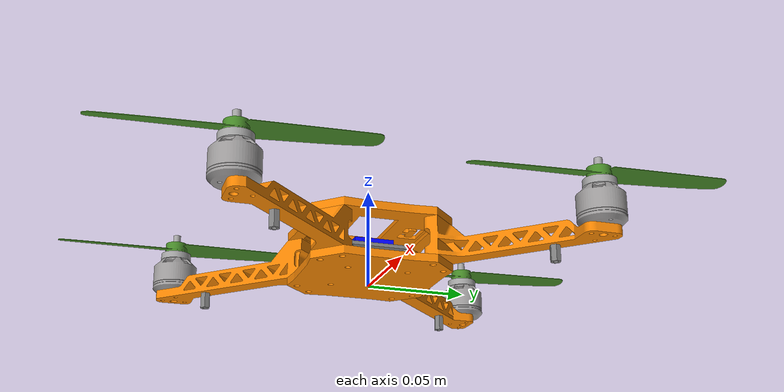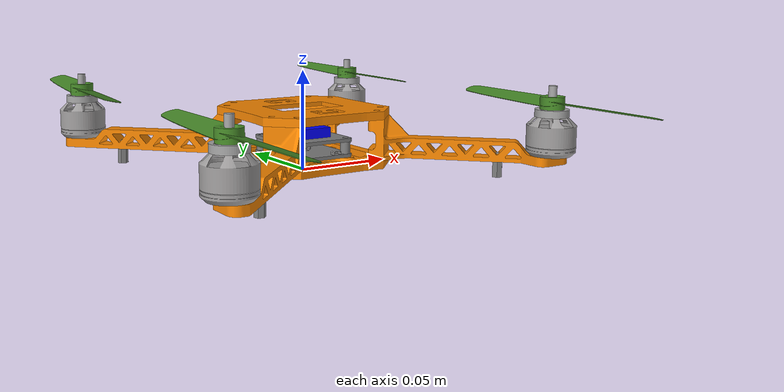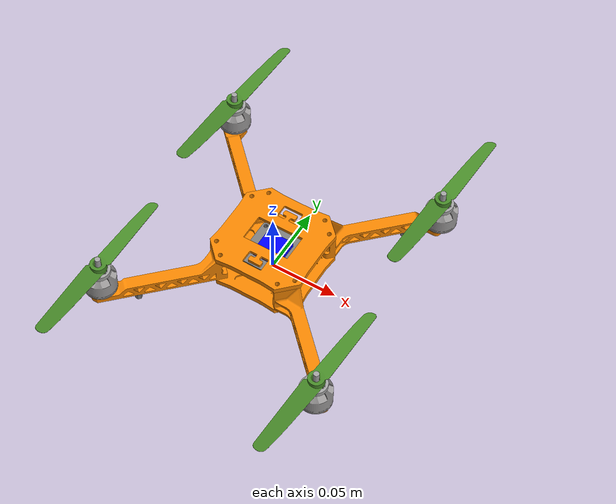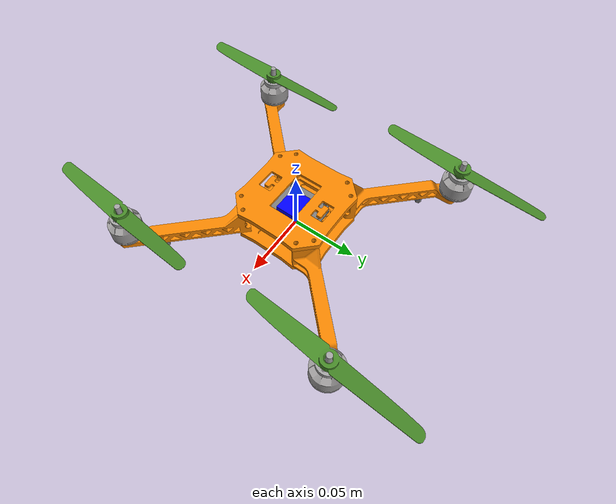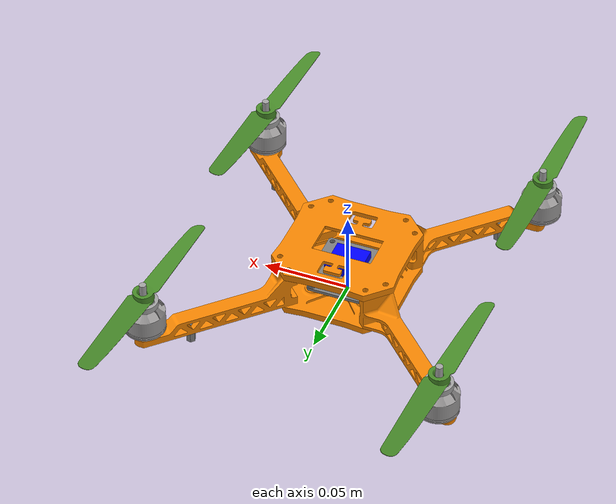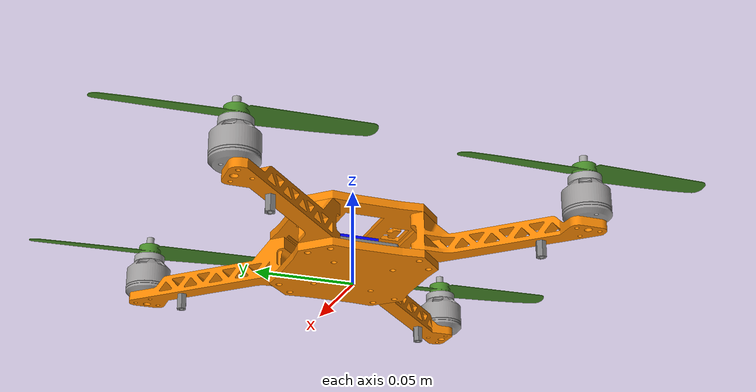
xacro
<robot name="quadcopter" xmlns:xacro="https://www.ros.org/wiki/xacro">

    <xacro:arg name="is_ignition" default="false"/>
    <xacro:include filename="$(find drone_description)/urdf/quadcopter_gazebo.xacro"/>
    <xacro:include filename="$(find drone_description)/urdf/quadcopter_ros2_control.xacro"/>

    <link name="root" />

    <link name="arm_link">
        <inertial>
            <mass value="0.0122447" />
            <origin xyz="-0.0285564 0.0160061 0.00620303" rpy="0 -0 0.785398" />
            <inertia ixx="5.06194e-06" ixy="4.8103e-06" ixz="-5.94412e-07" iyy="5.62008e-06" iyz="5.48452e-07" izz="1.00597e-05" />
        </inertial>
        <visual>
            <origin xyz="-0.00777817 -0.013435 0" rpy="0 -0 0.785398" />
            <geometry>
                <mesh filename="package://drone_description/meshes/Arm_link.stl" scale="1 1 1" />
            </geometry>
            <material name="0.972549_0.529412_0.003922_0.000000_0.000000">
                <color rgba="0.972549 0.529412 0.00392157 1" />
            </material>
        </visual>
        <collision>
            <origin xyz="-0.00777817 -0.013435 0" rpy="0 -0 0.785398" />
            <geometry>
                <mesh filename="package://drone_description/meshes/Arm_link.stl" scale="1 1 1" />
            </geometry>
        </collision>
    </link>
    <link name="arm_link_1">
        <inertial>
            <mass value="0.0122447" />
            <origin xyz="0.0200711 -0.0244914 0.00620303" rpy="0 -0 -2.35619" />
            <inertia ixx="5.06194e-06" ixy="4.8103e-06" ixz="5.94412e-07" iyy="5.62008e-06" iyz="-5.48452e-07" izz="1.00597e-05" />
        </inertial>
        <visual>
            <origin xyz="-0.000707107 0.00494975 0" rpy="0 -0 -2.35619" />
            <geometry>
                <mesh filename="package://drone_description/meshes/Arm_link.stl" scale="1 1 1" />
            </geometry>
            <material name="0.972549_0.529412_0.003922_0.000000_0.000000">
                <color rgba="0.972549 0.529412 0.00392157 1" />
            </material>
        </visual>
        <collision>
            <origin xyz="-0.000707107 0.00494975 0" rpy="0 -0 -2.35619" />
            <geometry>
                <mesh filename="package://drone_description/meshes/Arm_link.stl" scale="1 1 1" />
            </geometry>
        </collision>
    </link>
    <link name="arm_link_2">
        <inertial>
            <mass value="0.0122447" />
            <origin xyz="-0.0200711 0.0244914 0.00620303" rpy="0 -0 0.785398" />
            <inertia ixx="5.06194e-06" ixy="4.8103e-06" ixz="-5.94412e-07" iyy="5.62008e-06" iyz="5.48452e-07" izz="1.00597e-05" />
        </inertial>
        <visual>
            <origin xyz="0.000707107 -0.00494975 0" rpy="0 -0 0.785398" />
            <geometry>
                <mesh filename="package://drone_description/meshes/Arm_link.stl" scale="1 1 1" />
            </geometry>
            <material name="0.972549_0.529412_0.003922_0.000000_0.000000">
                <color rgba="0.972549 0.529412 0.00392157 1" />
            </material>
        </visual>
        <collision>
            <origin xyz="0.000707107 -0.00494975 0" rpy="0 -0 0.785398" />
            <geometry>
                <mesh filename="package://drone_description/meshes/Arm_link.stl" scale="1 1 1" />
            </geometry>
        </collision>
    </link>
    <link name="arm_link_3">
        <inertial>
            <mass value="0.0122447" />
            <origin xyz="-0.0285564 0.0160061 0.00620303" rpy="0 -0 0.785398" />
            <inertia ixx="5.06194e-06" ixy="4.8103e-06" ixz="-5.94412e-07" iyy="5.62008e-06" iyz="5.48452e-07" izz="1.00597e-05" />
        </inertial>
        <visual>
            <origin xyz="-0.00777817 -0.013435 0" rpy="0 -0 0.785398" />
            <geometry>
                <mesh filename="package://drone_description/meshes/Arm_link.stl" scale="1 1 1" />
            </geometry>
            <material name="0.972549_0.529412_0.003922_0.000000_0.000000">
                <color rgba="0.972549 0.529412 0.00392157 1" />
            </material>
        </visual>
        <collision>
            <origin xyz="-0.00777817 -0.013435 0" rpy="0 -0 0.785398" />
            <geometry>
                <mesh filename="package://drone_description/meshes/Arm_link.stl" scale="1 1 1" />
            </geometry>
        </collision>
    </link>
    <link name="base_link">
        <inertial>
            <mass value="0.0173402" />
            <origin xyz="1.23741e-17 -4.31023e-18 0.00558296" rpy="0 -0 0" />
            <inertia ixx="8.0893e-06" ixy="0" ixz="0" iyy="8.0893e-06" iyz="0" izz="1.61357e-05" />
        </inertial>
        <visual>
            <origin xyz="4.91335e-18 -1.08551e-18 0.004" rpy="0 -0 0" />
            <geometry>
                <mesh filename="package://drone_description/meshes/base_link.stl" scale="1 1 1" />
            </geometry>
            <material name="0.972549_0.529412_0.003922_0.000000_0.000000">
                <color rgba="0.972549 0.529412 0.00392157 1" />
            </material>
        </visual>
        <collision>
            <origin xyz="4.91335e-18 -1.08551e-18 0.004" rpy="0 -0 0" />
            <geometry>
                <mesh filename="package://drone_description/meshes/base_link.stl" scale="1 1 1" />
            </geometry>
        </collision>
    </link>
    <link name="board_link">
        <inertial>
            <mass value="0.00355087" />
            <origin xyz="-0.0152225 0.0152023 0.000880481" rpy="0 -0 0" />
            <inertia ixx="3.74084e-07" ixy="1.52065e-09" ixz="-1.74638e-10" iyy="3.72328e-07" iyz="3.03037e-10" izz="7.44525e-07" />
        </inertial>
        <visual>
            <origin xyz="-0.01525 0.01525 0" rpy="0 -0 0" />
            <geometry>
                <mesh filename="package://drone_description/meshes/Board_link.stl" scale="1 1 1" />
            </geometry>
            <material name="0.498039_0.498039_0.498039_0.000000_0.000000">
                <color rgba="0.498039 0.498039 0.498039 1" />
            </material>
        </visual>
        <collision>
            <origin xyz="-0.01525 0.01525 0" rpy="0 -0 0" />
            <geometry>
                <mesh filename="package://drone_description/meshes/Board_link.stl" scale="1 1 1" />
            </geometry>
        </collision>
    </link>
    <link name="board_link_1">
        <inertial>
            <mass value="0.00355087" />
            <origin xyz="0.0152775 0.0152023 -0.000869519" rpy="0 -0 0" />
            <inertia ixx="3.74084e-07" ixy="1.52065e-09" ixz="-1.74638e-10" iyy="3.72328e-07" iyz="3.03037e-10" izz="7.44525e-07" />
        </inertial>
        <visual>
            <origin xyz="0.01525 0.01525 -0.00175" rpy="0 -0 0" />
            <geometry>
                <mesh filename="package://drone_description/meshes/Board_link.stl" scale="1 1 1" />
            </geometry>
            <material name="0.498039_0.498039_0.498039_0.000000_0.000000">
                <color rgba="0.498039 0.498039 0.498039 1" />
            </material>
        </visual>
        <collision>
            <origin xyz="0.01525 0.01525 -0.00175" rpy="0 -0 0" />
            <geometry>
                <mesh filename="package://drone_description/meshes/Board_link.stl" scale="1 1 1" />
            </geometry>
        </collision>
    </link>
    <link name="imu_link">
        <inertial>
            <mass value="0.002104" />
            <origin xyz="1.4456e-19 5.56902e-19 0.0025" rpy="0 -0 0" />
            <inertia ixx="7.45167e-08" ixy="0" ixz="0" iyy="7.45167e-08" iyz="0" izz="1.40267e-07" />
        </inertial>
        <visual>
            <origin xyz="1.4456e-19 3.97541e-19 0" rpy="0 -0 0" />
            <geometry>
                <mesh filename="package://drone_description/meshes/imu_link.stl" scale="1 1 1" />
            </geometry>
            <material name="0.000000_0.000000_1.000000_0.000000_0.000000">
                <color rgba="0 0 1 1" />
            </material>
        </visual>
        <collision>
            <origin xyz="1.4456e-19 3.97541e-19 0" rpy="0 -0 0" />
            <geometry>
                <mesh filename="package://drone_description/meshes/imu_link.stl" scale="1 1 1" />
            </geometry>
        </collision>
    </link>
    <link name="motor_link">
        <inertial>
            <mass value="0.00882396" />
            <origin xyz="9.97732e-19 -7.32058e-19 0.00731802" rpy="0 -0 0.742439" />
            <inertia ixx="4.48843e-07" ixy="4.20673e-10" ixz="0" iyy="4.4877e-07" iyz="0" izz="5.69462e-07" />
        </inertial>
        <visual>
            <origin xyz="0 0 0" rpy="0 -0 0.742439" />
            <geometry>
                <mesh filename="package://drone_description/meshes/Motor_link.stl" scale="1 1 1" />
            </geometry>
            <material name="0.623529_0.615686_0.615686_0.000000_0.000000">
                <color rgba="0.623529 0.615686 0.615686 1" />
            </material>
        </visual>
        <collision>
            <origin xyz="0 0 0" rpy="0 -0 0.742439" />
            <geometry>
                <mesh filename="package://drone_description/meshes/Motor_link.stl" scale="1 1 1" />
            </geometry>
        </collision>
    </link>
    <link name="motor_link_1">
        <inertial>
            <mass value="0.00882396" />
            <origin xyz="1.02825e-18 -6.88534e-19 0.00731802" rpy="0 -0 0.785398" />
            <inertia ixx="4.48807e-07" ixy="4.2223e-10" ixz="0" iyy="4.48807e-07" iyz="0" izz="5.69462e-07" />
        </inertial>
        <visual>
            <origin xyz="0 0 0" rpy="0 -0 0.785398" />
            <geometry>
                <mesh filename="package://drone_description/meshes/Motor_link.stl" scale="1 1 1" />
            </geometry>
            <material name="0.623529_0.615686_0.615686_0.000000_0.000000">
                <color rgba="0.623529 0.615686 0.615686 1" />
            </material>
        </visual>
        <collision>
            <origin xyz="0 0 0" rpy="0 -0 0.785398" />
            <geometry>
                <mesh filename="package://drone_description/meshes/Motor_link.stl" scale="1 1 1" />
            </geometry>
        </collision>
    </link>
    <link name="motor_link_2">
        <inertial>
            <mass value="0.00882396" />
            <origin xyz="9.97732e-19 -7.32058e-19 0.00731802" rpy="0 -0 0.742439" />
            <inertia ixx="4.48843e-07" ixy="4.20673e-10" ixz="0" iyy="4.4877e-07" iyz="0" izz="5.69462e-07" />
        </inertial>
        <visual>
            <origin xyz="0 0 0" rpy="0 -0 0.742439" />
            <geometry>
                <mesh filename="package://drone_description/meshes/Motor_link.stl" scale="1 1 1" />
            </geometry>
            <material name="0.623529_0.615686_0.615686_0.000000_0.000000">
                <color rgba="0.623529 0.615686 0.615686 1" />
            </material>
        </visual>
        <collision>
            <origin xyz="0 0 0" rpy="0 -0 0.742439" />
            <geometry>
                <mesh filename="package://drone_description/meshes/Motor_link.stl" scale="1 1 1" />
            </geometry>
        </collision>
    </link>
    <link name="motor_link_3">
        <inertial>
            <mass value="0.00882396" />
            <origin xyz="9.97732e-19 -7.32058e-19 0.00731802" rpy="0 -0 0.742439" />
            <inertia ixx="4.48843e-07" ixy="4.20673e-10" ixz="0" iyy="4.4877e-07" iyz="0" izz="5.69462e-07" />
        </inertial>
        <visual>
            <origin xyz="0 0 0" rpy="0 -0 0.742439" />
            <geometry>
                <mesh filename="package://drone_description/meshes/Motor_link.stl" scale="1 1 1" />
            </geometry>
            <material name="0.623529_0.615686_0.615686_0.000000_0.000000">
                <color rgba="0.623529 0.615686 0.615686 1" />
            </material>
        </visual>
        <collision>
            <origin xyz="0 0 0" rpy="0 -0 0.742439" />
            <geometry>
                <mesh filename="package://drone_description/meshes/Motor_link.stl" scale="1 1 1" />
            </geometry>
        </collision>
    </link>
    <link name="pillar_link">
        <inertial>
            <mass value="0.000216885" />
            <origin xyz="1.60752e-19 -5.78954e-19 0.00290028" rpy="0 -0 0" />
            <inertia ixx="2.17014e-09" ixy="0" ixz="0" iyy="2.17014e-09" iyz="0" izz="6.25114e-10" />
        </inertial>
        <visual>
            <origin xyz="0 -7.65404e-20 -0.0039" rpy="0 -0 0" />
            <geometry>
                <mesh filename="package://drone_description/meshes/Pillar_link.stl" scale="1 1 1" />
            </geometry>
            <material name="0.498039_0.498039_0.498039_0.000000_0.000000">
                <color rgba="0.498039 0.498039 0.498039 1" />
            </material>
        </visual>
        <collision>
            <origin xyz="0 -7.65404e-20 -0.0039" rpy="0 -0 0" />
            <geometry>
                <mesh filename="package://drone_description/meshes/Pillar_link.stl" scale="1 1 1" />
            </geometry>
        </collision>
    </link>
    <link name="pillar_link_1">
        <inertial>
            <mass value="0.000216885" />
            <origin xyz="1.60752e-19 -5.78954e-19 0.00290028" rpy="0 -0 0" />
            <inertia ixx="2.17014e-09" ixy="0" ixz="0" iyy="2.17014e-09" iyz="0" izz="6.25114e-10" />
        </inertial>
        <visual>
            <origin xyz="0 -7.65404e-20 -0.0039" rpy="0 -0 0" />
            <geometry>
                <mesh filename="package://drone_description/meshes/Pillar_link.stl" scale="1 1 1" />
            </geometry>
            <material name="0.498039_0.498039_0.498039_0.000000_0.000000">
                <color rgba="0.498039 0.498039 0.498039 1" />
            </material>
        </visual>
        <collision>
            <origin xyz="0 -7.65404e-20 -0.0039" rpy="0 -0 0" />
            <geometry>
                <mesh filename="package://drone_description/meshes/Pillar_link.stl" scale="1 1 1" />
            </geometry>
        </collision>
    </link>
    <link name="pillar_link_2">
        <inertial>
            <mass value="0.000216885" />
            <origin xyz="1.60752e-19 -5.78954e-19 0.00290028" rpy="0 -0 0" />
            <inertia ixx="2.17014e-09" ixy="0" ixz="0" iyy="2.17014e-09" iyz="0" izz="6.25114e-10" />
        </inertial>
        <visual>
            <origin xyz="0 -7.65404e-20 -0.0039" rpy="0 -0 0" />
            <geometry>
                <mesh filename="package://drone_description/meshes/Pillar_link.stl" scale="1 1 1" />
            </geometry>
            <material name="0.498039_0.498039_0.498039_0.000000_0.000000">
                <color rgba="0.498039 0.498039 0.498039 1" />
            </material>
        </visual>
        <collision>
            <origin xyz="0 -7.65404e-20 -0.0039" rpy="0 -0 0" />
            <geometry>
                <mesh filename="package://drone_description/meshes/Pillar_link.stl" scale="1 1 1" />
            </geometry>
        </collision>
    </link>
    <link name="pillar_link_3">
        <inertial>
            <mass value="0.000216885" />
            <origin xyz="1.60752e-19 -5.78954e-19 0.00290028" rpy="0 -0 0" />
            <inertia ixx="2.17014e-09" ixy="0" ixz="0" iyy="2.17014e-09" iyz="0" izz="6.25114e-10" />
        </inertial>
        <visual>
            <origin xyz="0 -7.65404e-20 -0.0039" rpy="0 -0 0" />
            <geometry>
                <mesh filename="package://drone_description/meshes/Pillar_link.stl" scale="1 1 1" />
            </geometry>
            <material name="0.498039_0.498039_0.498039_0.000000_0.000000">
                <color rgba="0.498039 0.498039 0.498039 1" />
            </material>
        </visual>
        <collision>
            <origin xyz="0 -7.65404e-20 -0.0039" rpy="0 -0 0" />
            <geometry>
                <mesh filename="package://drone_description/meshes/Pillar_link.stl" scale="1 1 1" />
            </geometry>
        </collision>
    </link>
    <link name="propeller_link">
        <inertial>
            <mass value="0.00103601" />
            <origin xyz="5.18715e-19 -4.49107e-18 0.0031279" rpy="0 -0 0" />
            <inertia ixx="5.99038e-07" ixy="-2.32556e-08" ixz="0" iyy="1.33988e-08" iyz="0" izz="6.08582e-07" />
        </inertial>
        <visual>
            <origin xyz="-8.09667e-19 -4.69218e-19 0.003" rpy="0 -0 0" />
            <geometry>
                <mesh filename="package://drone_description/meshes/Propeller_link.stl" scale="1 1 1" />
            </geometry>
            <material name="0.282353_0.549020_0.160784_0.000000_0.000000">
                <color rgba="0.282353 0.54902 0.160784 1" />
            </material>
        </visual>
    </link>
    <link name="propeller_link_1">
        <inertial>
            <mass value="0.00103601" />
            <origin xyz="5.18715e-19 -4.49107e-18 0.0031279" rpy="0 -0 0" />
            <inertia ixx="5.99038e-07" ixy="-2.32556e-08" ixz="0" iyy="1.33988e-08" iyz="0" izz="6.08582e-07" />
        </inertial>
        <visual>
            <origin xyz="-8.09667e-19 -4.69218e-19 0.003" rpy="0 -0 0" />
            <geometry>
                <mesh filename="package://drone_description/meshes/Propeller_link.stl" scale="1 1 1" />
            </geometry>
            <material name="0.282353_0.549020_0.160784_0.000000_0.000000">
                <color rgba="0.282353 0.54902 0.160784 1" />
            </material>
        </visual>
    </link>
    <link name="propeller_link_2">
        <inertial>
            <mass value="0.00103601" />
            <origin xyz="5.18715e-19 -4.49107e-18 0.0031279" rpy="0 -0 0" />
            <inertia ixx="5.99038e-07" ixy="-2.32556e-08" ixz="0" iyy="1.33988e-08" iyz="0" izz="6.08582e-07" />
        </inertial>
        <visual>
            <origin xyz="-8.09667e-19 -4.69218e-19 0.003" rpy="0 -0 0" />
            <geometry>
                <mesh filename="package://drone_description/meshes/Propeller_link.stl" scale="1 1 1" />
            </geometry>
            <material name="0.282353_0.549020_0.160784_0.000000_0.000000">
                <color rgba="0.282353 0.54902 0.160784 1" />
            </material>
        </visual>
    </link>
    <link name="propeller_link_3">
        <inertial>
            <mass value="0.00103601" />
            <origin xyz="5.18715e-19 -4.49107e-18 0.0031279" rpy="0 -0 0" />
            <inertia ixx="5.99038e-07" ixy="-2.32556e-08" ixz="0" iyy="1.33988e-08" iyz="0" izz="6.08582e-07" />
        </inertial>
        <visual>
            <origin xyz="-8.09667e-19 -4.69218e-19 0.003" rpy="0 -0 0" />
            <geometry>
                <mesh filename="package://drone_description/meshes/Propeller_link.stl" scale="1 1 1" />
            </geometry>
            <material name="0.282353_0.549020_0.160784_0.000000_0.000000">
                <color rgba="0.282353 0.54902 0.160784 1" />
            </material>
        </visual>
    </link>
    <link name="spacer_link">
        <inertial>
            <mass value="0.000120637" />
            <origin xyz="-1.91341e-19 9.56755e-20 0.003" rpy="0 -0 0" />
            <inertia ixx="6.18265e-10" ixy="0" ixz="0" iyy="6.18265e-10" iyz="0" izz="5.12708e-10" />
        </inertial>
        <visual>
            <origin xyz="0 -9.18485e-20 0" rpy="0 -0 0" />
            <geometry>
                <mesh filename="package://drone_description/meshes/Spacer_link.stl" scale="1 1 1" />
            </geometry>
            <material name="0.498039_0.498039_0.498039_0.000000_0.000000">
                <color rgba="0.498039 0.498039 0.498039 1" />
            </material>
        </visual>
        <collision>
            <origin xyz="0 -9.18485e-20 0" rpy="0 -0 0" />
            <geometry>
                <mesh filename="package://drone_description/meshes/Spacer_link.stl" scale="1 1 1" />
            </geometry>
        </collision>
    </link>
    <link name="spacer_link_1">
        <inertial>
            <mass value="0.000120637" />
            <origin xyz="-1.91341e-19 9.56755e-20 0.003" rpy="0 -0 0" />
            <inertia ixx="6.18265e-10" ixy="0" ixz="0" iyy="6.18265e-10" iyz="0" izz="5.12708e-10" />
        </inertial>
        <visual>
            <origin xyz="0 -9.18485e-20 0" rpy="0 -0 0" />
            <geometry>
                <mesh filename="package://drone_description/meshes/Spacer_link.stl" scale="1 1 1" />
            </geometry>
            <material name="0.498039_0.498039_0.498039_0.000000_0.000000">
                <color rgba="0.498039 0.498039 0.498039 1" />
            </material>
        </visual>
        <collision>
            <origin xyz="0 -9.18485e-20 0" rpy="0 -0 0" />
            <geometry>
                <mesh filename="package://drone_description/meshes/Spacer_link.stl" scale="1 1 1" />
            </geometry>
        </collision>
    </link>
    <link name="spacer_link_2">
        <inertial>
            <mass value="0.000120637" />
            <origin xyz="-1.91341e-19 9.56755e-20 0.003" rpy="0 -0 0" />
            <inertia ixx="6.18265e-10" ixy="0" ixz="0" iyy="6.18265e-10" iyz="0" izz="5.12708e-10" />
        </inertial>
        <visual>
            <origin xyz="0 -9.18485e-20 0" rpy="0 -0 0" />
            <geometry>
                <mesh filename="package://drone_description/meshes/Spacer_link.stl" scale="1 1 1" />
            </geometry>
            <material name="0.498039_0.498039_0.498039_0.000000_0.000000">
                <color rgba="0.498039 0.498039 0.498039 1" />
            </material>
        </visual>
        <collision>
            <origin xyz="0 -9.18485e-20 0" rpy="0 -0 0" />
            <geometry>
                <mesh filename="package://drone_description/meshes/Spacer_link.stl" scale="1 1 1" />
            </geometry>
        </collision>
    </link>
    <link name="spacer_link_3">
        <inertial>
            <mass value="0.000120637" />
            <origin xyz="-1.91341e-19 9.56755e-20 0.003" rpy="0 -0 0" />
            <inertia ixx="6.18265e-10" ixy="0" ixz="0" iyy="6.18265e-10" iyz="0" izz="5.12708e-10" />
        </inertial>
        <visual>
            <origin xyz="0 -9.18485e-20 0" rpy="0 -0 0" />
            <geometry>
                <mesh filename="package://drone_description/meshes/Spacer_link.stl" scale="1 1 1" />
            </geometry>
            <material name="0.498039_0.498039_0.498039_0.000000_0.000000">
                <color rgba="0.498039 0.498039 0.498039 1" />
            </material>
        </visual>
        <collision>
            <origin xyz="0 -9.18485e-20 0" rpy="0 -0 0" />
            <geometry>
                <mesh filename="package://drone_description/meshes/Spacer_link.stl" scale="1 1 1" />
            </geometry>
        </collision>
    </link>
    <link name="spinner_link">
        <inertial>
            <mass value="0.00113254" />
            <origin xyz="8.03413e-19 -1.61865e-36 0.00310082" rpy="0 -0 0" />
            <inertia ixx="2.86144e-08" ixy="0" ixz="0" iyy="2.86144e-08" iyz="0" izz="3.17466e-08" />
        </inertial>
        <visual>
            <origin xyz="0 0 0" rpy="0 -0 0" />
            <geometry>
                <mesh filename="package://drone_description/meshes/Spinner_link.stl" scale="1 1 1" />
            </geometry>
            <material name="0.647059_0.647059_0.647059_0.000000_0.000000">
                <color rgba="0.647059 0.647059 0.647059 1" />
            </material>
        </visual>
    </link>
    <link name="spinner_link_1">
        <inertial>
            <mass value="0.00113254" />
            <origin xyz="8.03413e-19 -1.61865e-36 0.00310082" rpy="0 -0 0" />
            <inertia ixx="2.86144e-08" ixy="0" ixz="0" iyy="2.86144e-08" iyz="0" izz="3.17466e-08" />
        </inertial>
        <visual>
            <origin xyz="0 0 0" rpy="0 -0 0" />
            <geometry>
                <mesh filename="package://drone_description/meshes/Spinner_link.stl" scale="1 1 1" />
            </geometry>
            <material name="0.647059_0.647059_0.647059_0.000000_0.000000">
                <color rgba="0.647059 0.647059 0.647059 1" />
            </material>
        </visual>
    </link>
    <link name="spinner_link_2">
        <inertial>
            <mass value="0.00113254" />
            <origin xyz="8.03413e-19 -1.61865e-36 0.00310082" rpy="0 -0 0" />
            <inertia ixx="2.86144e-08" ixy="0" ixz="0" iyy="2.86144e-08" iyz="0" izz="3.17466e-08" />
        </inertial>
        <visual>
            <origin xyz="0 0 0" rpy="0 -0 0" />
            <geometry>
                <mesh filename="package://drone_description/meshes/Spinner_link.stl" scale="1 1 1" />
            </geometry>
            <material name="0.647059_0.647059_0.647059_0.000000_0.000000">
                <color rgba="0.647059 0.647059 0.647059 1" />
            </material>
        </visual>
    </link>
    <link name="spinner_link_3">
        <inertial>
            <mass value="0.00113254" />
            <origin xyz="-1.45706e-18 8.3325e-35 0.00310082" rpy="0 -0 0" />
            <inertia ixx="2.86144e-08" ixy="0" ixz="0" iyy="2.86144e-08" iyz="0" izz="3.17466e-08" />
        </inertial>
        <visual>
            <origin xyz="-2.26047e-18 8.49437e-35 4.33681e-19" rpy="0 -0 0" />
            <geometry>
                <mesh filename="package://drone_description/meshes/Spinner_link.stl" scale="1 1 1" />
            </geometry>
            <material name="0.647059_0.647059_0.647059_0.000000_0.000000">
                <color rgba="0.647059 0.647059 0.647059 1" />
            </material>
        </visual>
    </link>
    <link name="top_link">
        <inertial>
            <mass value="0.0175978" />
            <origin xyz="-0.0311127 0.0226274 -0.00247201" rpy="0 -0 0" />
            <inertia ixx="8.7077e-06" ixy="0" ixz="0" iyy="8.88847e-06" iyz="0" izz="1.75536e-05" />
        </inertial>
        <visual>
            <origin xyz="-0.0311127 0.0226274 -0.0041" rpy="0 -0 0" />
            <geometry>
                <mesh filename="package://drone_description/meshes/Top_link.stl" scale="1 1 1" />
            </geometry>
            <material name="0.972549_0.529412_0.003922_0.000000_0.000000">
                <color rgba="0.972549 0.529412 0.00392157 1" />
            </material>
        </visual>
        <collision>
            <origin xyz="-0.0311127 0.0226274 -0.0041" rpy="0 -0 0" />
            <geometry>
                <mesh filename="package://drone_description/meshes/Top_link.stl" scale="1 1 1" />
            </geometry>
        </collision>
    </link>
    <joint name="arm_top_1_joint" type="fixed">
        <origin xyz="1.80411e-16 1.70003e-16 0.02" rpy="3.14159 7.61702e-16 1.5708" />
        <axis xyz="-0 -0 1" />
        <parent link="arm_link" />
        <child link="top_link" />
    </joint>
    <joint name="base_board1_joint" type="fixed">
        <origin xyz="0.01525 -0.01525 0.0075" rpy="2.22283e-16 -3.92282e-17 -1.77636e-15" />
        <axis xyz="0 0 -1" />
        <parent link="base_link" />
        <child link="board_link" />
    </joint>
    <joint name="base_joint" type="fixed">
        <origin xyz="-1.56913e-19 8.43865e-19 -1.38778e-17" rpy="-3.82105e-31 6.02855e-61 3.15544e-30" />
        <axis xyz="-0 -0 -1" />
        <parent link="root" />
        <child link="base_link" />
    </joint>
    <joint name="board2_imu_joint" type="fixed">
        <origin xyz="0.01525 0.01525 -0.00175" rpy="-3.14159 1.2326e-32 3.14159" />
        <axis xyz="0 0 -1" />
        <parent link="board_link_1" />
        <child link="imu_link" />
    </joint>
    <joint name="motor1_spinner1_joint" type="continuous">
        <origin xyz="4.19227e-18 -2.77556e-17 0.0185" rpy="-1.47326e-16 6.30118e-17 0.785398" />
        <axis xyz="-0 -0 -1" />
        <parent link="motor_link_1" />
        <child link="spinner_link_3" />
    </joint>
    <joint name="motor2_spinner2_joint" type="continuous">
        <origin xyz="1.38778e-17 1.32506e-18 0.0185" rpy="2.29353e-32 -2.31216e-32 0.742439" />
        <axis xyz="0 0 -1" />
        <parent link="motor_link_3" />
        <child link="spinner_link_1" />
    </joint>
    <joint name="motor3_spinner3_joint" type="continuous">
        <origin xyz="-7.74265e-19 -1.38778e-17 0.0185" rpy="4.9128e-32 -3.33176e-32 0.742439" />
        <axis xyz="0 0 -1" />
        <parent link="motor_link" />
        <child link="spinner_link_2" />
    </joint>
    <joint name="motor4_spinner4_joint" type="continuous">
        <origin xyz="1.38778e-17 -1.33374e-18 0.0185" rpy="2.84368e-32 4.57052e-32 0.742439" />
        <axis xyz="0 0 -1" />
        <parent link="motor_link_2" />
        <child link="spinner_link" />
    </joint>
    <joint name="rear_left_arm_base_1_joint" type="fixed">
        <origin xyz="-0.0226274 0.0311127 0.008" rpy="-3.02751e-16 1.17373e-16 -1.33227e-15" />
        <axis xyz="0 0 -1" />
        <parent link="base_link" />
        <child link="arm_link_3" />
    </joint>
    <joint name="rear_left_arm_motor4_joint" type="fixed">
        <origin xyz="-0.0622254 0.0537401 0.0045" rpy="3.05631e-16 -1.8134e-16 -0.785398" />
        <axis xyz="0 0 -1" />
        <parent link="arm_link_3" />
        <child link="motor_link_2" />
    </joint>
    <joint name="rear_left_arm_pillar4_joint" type="fixed">
        <origin xyz="-0.0481437 0.0332945 1.73472e-18" rpy="3.14159 3.53132e-16 2.35619" />
        <axis xyz="0 0 -1" />
        <parent link="arm_link_3" />
        <child link="pillar_link" />
    </joint>
    <joint name="rear_left_board1_spacer_joint" type="fixed">
        <origin xyz="-0.0305 0.0305 0.00175" rpy="1.13166e-17 -4.93038e-32 -2.21964e-34" />
        <axis xyz="0 0 -1" />
        <parent link="board_link" />
        <child link="spacer_link" />
    </joint>
    <joint name="rear_right_arm_base_1_joint" type="fixed">
        <origin xyz="0.0226274 0.0311127 0.008" rpy="-1.94344e-16 -3.36355e-16 -1.5708" />
        <axis xyz="0 0 -1" />
        <parent link="base_link" />
        <child link="arm_link_2" />
    </joint>
    <joint name="rear_right_arm_motor3_joint" type="fixed">
        <origin xyz="-0.0537401 0.0622254 0.0045" rpy="3.03717e-16 -2.39434e-16 0.785398" />
        <axis xyz="0 0 -1" />
        <parent link="arm_link_2" />
        <child link="motor_link" />
    </joint>
    <joint name="rear_right_arm_pillar3_joint" type="fixed">
        <origin xyz="-0.0396584 0.0417797 1.73472e-18" rpy="3.14159 2.76654e-16 -2.35619" />
        <axis xyz="0 0 -1" />
        <parent link="arm_link_2" />
        <child link="pillar_link_1" />
    </joint>
    <joint name="rear_right_board1_spacer_joint" type="fixed">
        <origin xyz="-1.73472e-18 0.0305 0.00175" rpy="1.13166e-17 -4.93038e-32 -2.21964e-34" />
        <axis xyz="0 0 -1" />
        <parent link="board_link" />
        <child link="spacer_link_3" />
    </joint>
    <joint name="spacers_board2_joint" type="fixed">
        <origin xyz="1.73472e-18 -5.20417e-18 0.006" rpy="-3.14159 -1.63563e-16 3.14159" />
        <axis xyz="0 0 1" />
        <parent link="spacer_link_2" />
        <child link="board_link_1" />
    </joint>
    <joint name="spinner1_propeller1_joint" type="fixed">
        <origin xyz="0 0 0.0035" rpy="0 -0 0" />
        <axis xyz="0 0 -1" />
        <parent link="spinner_link_3" />
        <child link="propeller_link_2" />
    </joint>
    <joint name="spinner2_propeller2_joint" type="fixed">
        <origin xyz="-1.38778e-17 0 0.0035" rpy="-8.55285e-50 2.46519e-32 -6.93889e-18" />
        <axis xyz="0 0 -1" />
        <parent link="spinner_link_1" />
        <child link="propeller_link_1" />
    </joint>
    <joint name="spinner3_propeller3_joint" type="fixed">
        <origin xyz="0 0 0.0035" rpy="0 -0 2.902e-33" />
        <axis xyz="0 0 -1" />
        <parent link="spinner_link_2" />
        <child link="propeller_link_3" />
    </joint>
    <joint name="spinner4_propeller4_joint" type="fixed">
        <origin xyz="0 -1.38778e-17 0.0035" rpy="1.2326e-32 1.2326e-32 -6.93889e-18" />
        <axis xyz="0 0 -1" />
        <parent link="spinner_link" />
        <child link="propeller_link" />
    </joint>
    <joint name="top_left_arm_base_1_joint" type="fixed">
        <origin xyz="-0.0311127 -0.0226274 0.008" rpy="-2.2077e-15 -4.91732e-16 1.5708" />
        <axis xyz="0 0 -1" />
        <parent link="base_link" />
        <child link="arm_link" />
    </joint>
    <joint name="top_left_arm_motor1_joint" type="fixed">
        <origin xyz="-0.0622254 0.0537401 0.0045" rpy="-1.58314e-15 1.15155e-15 -2.35619" />
        <axis xyz="0 0 -1" />
        <parent link="arm_link" />
        <child link="motor_link_1" />
    </joint>
    <joint name="top_left_arm_pillar1_joint" type="fixed">
        <origin xyz="-0.0481437 0.0332945 1.16226e-16" rpy="-3.14159 -4.5454e-16 0.785398" />
        <axis xyz="0 0 -1" />
        <parent link="arm_link" />
        <child link="pillar_link_2" />
    </joint>
    <joint name="top_left_board1_spacer_joint" type="fixed">
        <origin xyz="-0.0305 -6.93889e-18 0.00175" rpy="1.13166e-17 -4.93038e-32 -2.21964e-34" />
        <axis xyz="0 0 -1" />
        <parent link="board_link" />
        <child link="spacer_link_1" />
    </joint>
    <joint name="top_right_arm_base_1_joint" type="fixed">
        <origin xyz="0.0311127 -0.0226274 0.008" rpy="-2.72392e-16 1.61602e-16 -1.22125e-15" />
        <axis xyz="0 0 -1" />
        <parent link="base_link" />
        <child link="arm_link_1" />
    </joint>
    <joint name="top_right_arm_motor2_joint" type="fixed">
        <origin xyz="0.0537401 -0.0622254 0.0045" rpy="2.98042e-16 -2.42953e-16 -0.785398" />
        <axis xyz="0 0 -1" />
        <parent link="arm_link_1" />
        <child link="motor_link_3" />
    </joint>
    <joint name="top_right_arm_pillar2_joint" type="fixed">
        <origin xyz="0.0396584 -0.0417797 -1.73472e-18" rpy="3.14159 3.67632e-16 2.35619" />
        <axis xyz="0 0 -1" />
        <parent link="arm_link_1" />
        <child link="pillar_link_3" />
    </joint>
    <joint name="top_right_board1_spacer_joint" type="fixed">
        <origin xyz="1.73472e-18 0 0.00175" rpy="1.13166e-17 -4.93038e-32 -2.21964e-34" />
        <axis xyz="0 0 -1" />
        <parent link="board_link" />
        <child link="spacer_link_2" />
    </joint>
</robot>
